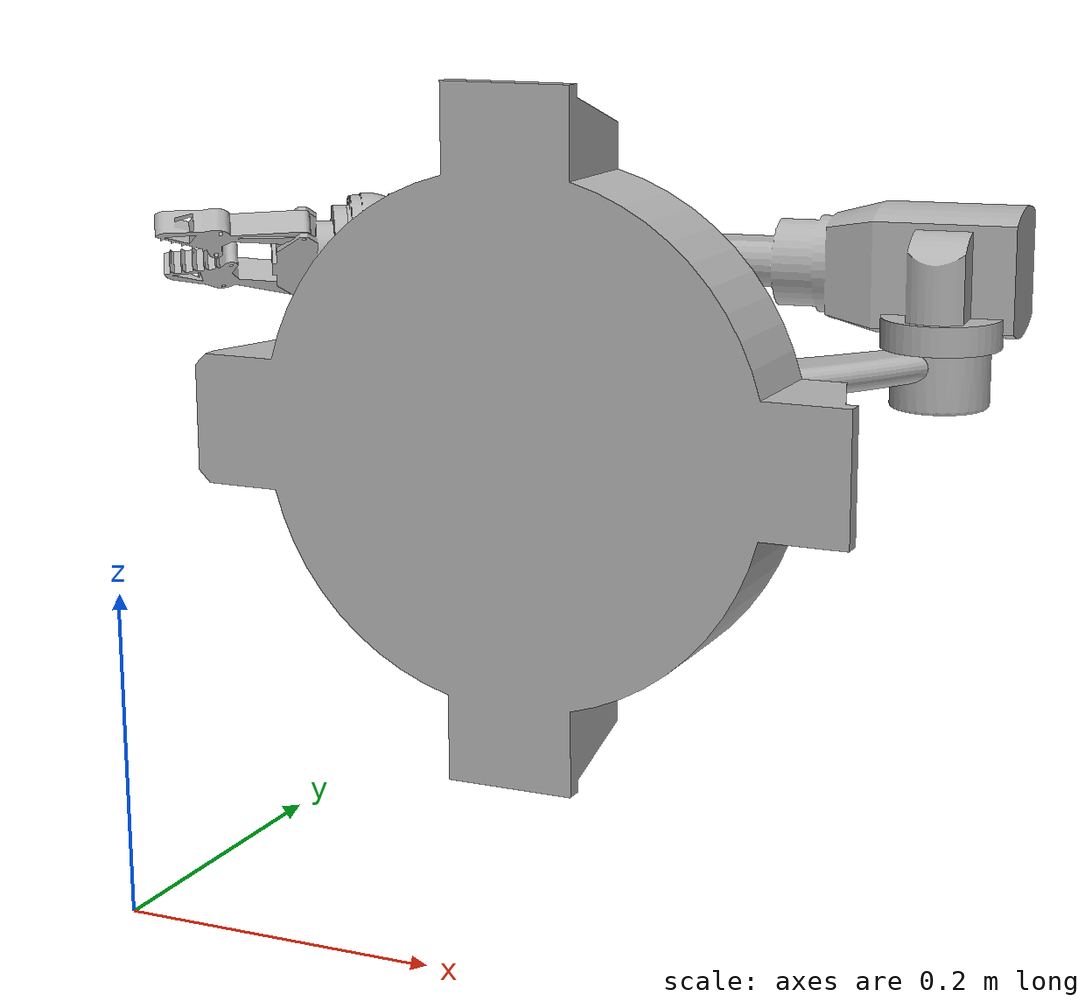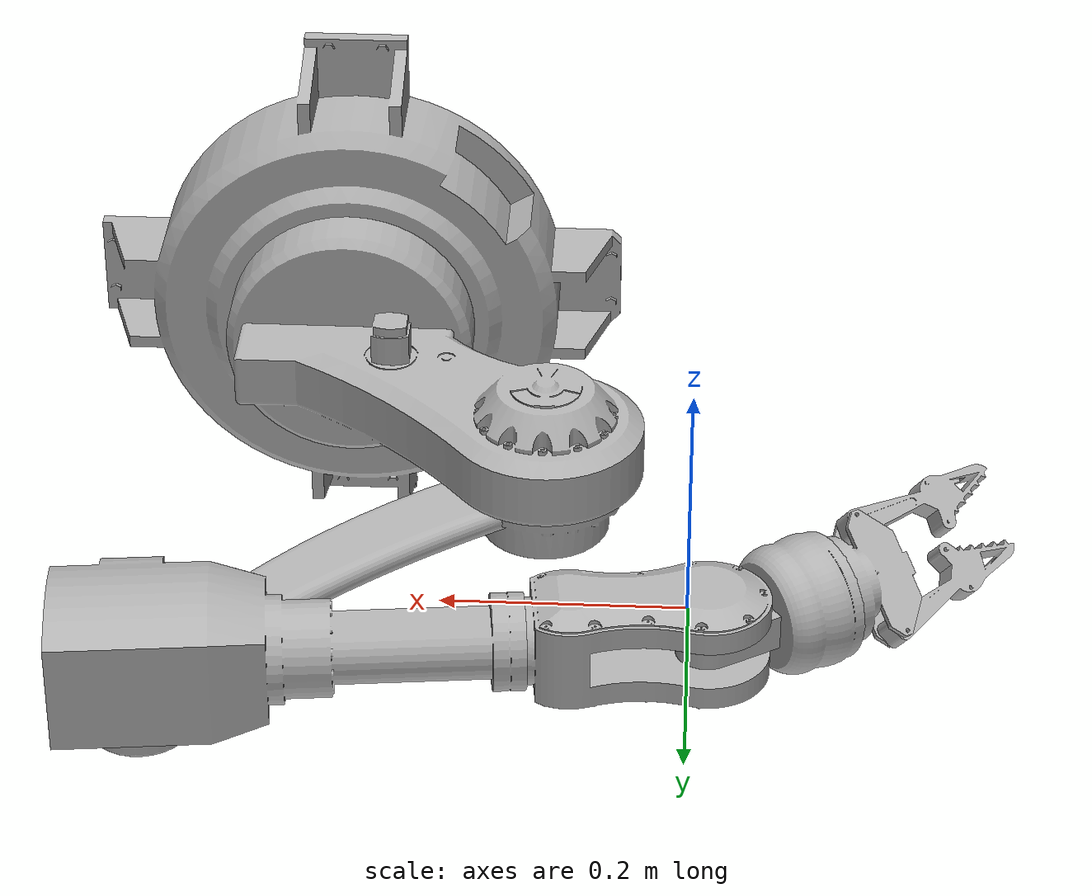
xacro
<?xml version="1.0" ?>
<robot name="industrial" xmlns:xacro="http://www.ros.org/wiki/xacro">

<xacro:include filename="$(find industrial_description)/urdf/materials.xacro" />
<xacro:include filename="$(find industrial_description)/urdf/industrial.trans" />
<xacro:include filename="$(find industrial_description)/urdf/industrial.gazebo" />
<link name="base_link">
  <inertial>
    <origin xyz="0.2548338399011842 0.039363954343754844 0.31001749808238654" rpy="0 0 0"/>
    <mass value="45.31428377967853"/>
    <inertia ixx="0.286619" iyy="0.523195" izz="0.286478" ixy="-0.000299" iyz="0.000324" ixz="-0.006278"/>
  </inertial>
  <visual>
    <origin xyz="0 0 0" rpy="0 0 0"/>
    <geometry>
      <mesh filename="package://industrial_description/meshes/base_link.stl" scale="0.001 0.001 0.001"/>
    </geometry>
    <material name="silver"/>
  </visual>
  <collision>
    <origin xyz="0 0 0" rpy="0 0 0"/>
    <geometry>
      <mesh filename="package://industrial_description/meshes/base_link.stl" scale="0.001 0.001 0.001"/>
    </geometry>
  </collision>
</link>

<link name="JAW_1_1">
  <inertial>
    <origin xyz="-0.05924661932331013 0.08495449970422879 0.003876432288686338" rpy="0 0 0"/>
    <mass value="18.758780946630694"/>
    <inertia ixx="0.097637" iyy="0.132376" izz="0.194071" ixy="0.074393" iyz="-0.004334" ixz="0.004819"/>
  </inertial>
  <visual>
    <origin xyz="-0.253392 -0.084654 -0.311443" rpy="0 0 0"/>
    <geometry>
      <mesh filename="package://industrial_description/meshes/JAW_1_1.stl" scale="0.001 0.001 0.001"/>
    </geometry>
    <material name="silver"/>
  </visual>
  <collision>
    <origin xyz="-0.253392 -0.084654 -0.311443" rpy="0 0 0"/>
    <geometry>
      <mesh filename="package://industrial_description/meshes/JAW_1_1.stl" scale="0.001 0.001 0.001"/>
    </geometry>
  </collision>
</link>

<link name="JAW_2_1">
  <inertial>
    <origin xyz="0.10451597593488317 0.0926934587697287 -0.015603834274600659" rpy="0 0 0"/>
    <mass value="6.328442247675211"/>
    <inertia ixx="0.065903" iyy="0.071298" izz="0.135195" ixy="-0.06454" iyz="-0.000178" ixz="-0.000489"/>
  </inertial>
  <visual>
    <origin xyz="-0.103425 -0.244808 -0.291223" rpy="0 0 0"/>
    <geometry>
      <mesh filename="package://industrial_description/meshes/JAW_2_1.stl" scale="0.001 0.001 0.001"/>
    </geometry>
    <material name="silver"/>
  </visual>
  <collision>
    <origin xyz="-0.103425 -0.244808 -0.291223" rpy="0 0 0"/>
    <geometry>
      <mesh filename="package://industrial_description/meshes/JAW_2_1.stl" scale="0.001 0.001 0.001"/>
    </geometry>
  </collision>
</link>

<link name="JAW_3_1">
  <inertial>
    <origin xyz="-0.04842956677440935 0.0339771945754212 0.046283489142288026" rpy="0 0 0"/>
    <mass value="11.40386436403121"/>
    <inertia ixx="0.015199" iyy="0.064243" izz="0.067337" ixy="-0.002718" iyz="-0.000888" ixz="0.000845"/>
  </inertial>
  <visual>
    <origin xyz="-0.353593 -0.489585 -0.291634" rpy="0 0 0"/>
    <geometry>
      <mesh filename="package://industrial_description/meshes/JAW_3_1.stl" scale="0.001 0.001 0.001"/>
    </geometry>
    <material name="silver"/>
  </visual>
  <collision>
    <origin xyz="-0.353593 -0.489585 -0.291634" rpy="0 0 0"/>
    <geometry>
      <mesh filename="package://industrial_description/meshes/JAW_3_1.stl" scale="0.001 0.001 0.001"/>
    </geometry>
  </collision>
</link>

<link name="JAW_4_1">
  <inertial>
    <origin xyz="-0.06679268105117524 -0.007650782836484127 0.0003458632493384406" rpy="0 0 0"/>
    <mass value="3.736976429844003"/>
    <inertia ixx="0.003209" iyy="0.009402" izz="0.008957" ixy="-0.000719" iyz="4e-06" ixz="-5e-06"/>
  </inertial>
  <visual>
    <origin xyz="-0.103992 -0.506311 -0.339224" rpy="0 0 0"/>
    <geometry>
      <mesh filename="package://industrial_description/meshes/JAW_4_1.stl" scale="0.001 0.001 0.001"/>
    </geometry>
    <material name="silver"/>
  </visual>
  <collision>
    <origin xyz="-0.103992 -0.506311 -0.339224" rpy="0 0 0"/>
    <geometry>
      <mesh filename="package://industrial_description/meshes/JAW_4_1.stl" scale="0.001 0.001 0.001"/>
    </geometry>
  </collision>
</link>

<link name="JAW_5_1">
  <inertial>
    <origin xyz="-0.049700553139761676 -0.031801725366641886 0.011526286038185563" rpy="0 0 0"/>
    <mass value="2.6723759798307576"/>
    <inertia ixx="0.002209" iyy="0.002555" izz="0.002819" ixy="-0.000372" iyz="1.1e-05" ixz="1.7e-05"/>
  </inertial>
  <visual>
    <origin xyz="0.010253 -0.493343 -0.326537" rpy="0 0 0"/>
    <geometry>
      <mesh filename="package://industrial_description/meshes/JAW_5_1.stl" scale="0.001 0.001 0.001"/>
    </geometry>
    <material name="silver"/>
  </visual>
  <collision>
    <origin xyz="0.010253 -0.493343 -0.326537" rpy="0 0 0"/>
    <geometry>
      <mesh filename="package://industrial_description/meshes/JAW_5_1.stl" scale="0.001 0.001 0.001"/>
    </geometry>
  </collision>
</link>

<link name="JAW_6_1">
  <inertial>
    <origin xyz="-0.013775380389767819 -0.008785724302981801 -8.748866270125166e-05" rpy="0 0 0"/>
    <mass value="0.600174321482272"/>
    <inertia ixx="0.000303" iyy="0.000284" izz="0.000281" ixy="2e-05" iyz="2e-05" ixz="-1.2e-05"/>
  </inertial>
  <visual>
    <origin xyz="0.089511 -0.442687 -0.338032" rpy="0 0 0"/>
    <geometry>
      <mesh filename="package://industrial_description/meshes/JAW_6_1.stl" scale="0.001 0.001 0.001"/>
    </geometry>
    <material name="silver"/>
  </visual>
  <collision>
    <origin xyz="0.089511 -0.442687 -0.338032" rpy="0 0 0"/>
    <geometry>
      <mesh filename="package://industrial_description/meshes/JAW_6_1.stl" scale="0.001 0.001 0.001"/>
    </geometry>
  </collision>
</link>

<link name="JAW_7__2__1">
  <inertial>
    <origin xyz="-0.03852995296871463 -0.027898058341137955 -0.010161505028423945" rpy="0 0 0"/>
    <mass value="0.2441632396754522"/>
    <inertia ixx="7.9e-05" iyy="0.000161" izz="0.000221" ixy="-9.1e-05" iyz="3e-06" ixz="-1e-06"/>
  </inertial>
  <visual>
    <origin xyz="0.103562 -0.403223 -0.370795" rpy="0 0 0"/>
    <geometry>
      <mesh filename="package://industrial_description/meshes/JAW_7__2__1.stl" scale="0.001 0.001 0.001"/>
    </geometry>
    <material name="silver"/>
  </visual>
  <collision>
    <origin xyz="0.103562 -0.403223 -0.370795" rpy="0 0 0"/>
    <geometry>
      <mesh filename="package://industrial_description/meshes/JAW_7__2__1.stl" scale="0.001 0.001 0.001"/>
    </geometry>
  </collision>
</link>

<link name="JAW_7_1">
  <inertial>
    <origin xyz="-0.02553781863191204 -0.04089139374660061 0.004945214888827543" rpy="0 0 0"/>
    <mass value="0.24576959229480003"/>
    <inertia ixx="0.00013" iyy="0.000118" izz="0.000215" ixy="-9.7e-05" iyz="3e-05" ixz="2.4e-05"/>
  </inertial>
  <visual>
    <origin xyz="0.137153 -0.456407 -0.318789" rpy="0 0 0"/>
    <geometry>
      <mesh filename="package://industrial_description/meshes/JAW_7_1.stl" scale="0.001 0.001 0.001"/>
    </geometry>
    <material name="silver"/>
  </visual>
  <collision>
    <origin xyz="0.137153 -0.456407 -0.318789" rpy="0 0 0"/>
    <geometry>
      <mesh filename="package://industrial_description/meshes/JAW_7_1.stl" scale="0.001 0.001 0.001"/>
    </geometry>
  </collision>
</link>

<joint name="Revolute 1" type="continuous">
  <origin xyz="0.253392 0.084654 0.311443" rpy="0 0 0"/>
  <parent link="base_link"/>
  <child link="JAW_1_1"/>
  <axis xyz="0.0 1.0 -0.0"/>
</joint>

<joint name="Revolute 2" type="continuous">
  <origin xyz="-0.149967 0.160154 -0.02022" rpy="0 0 0"/>
  <parent link="JAW_1_1"/>
  <child link="JAW_2_1"/>
  <axis xyz="0.001642 0.0 -0.999999"/>
</joint>

<joint name="Revolute 3" type="continuous">
  <origin xyz="0.250168 0.244777 0.000411" rpy="0 0 0"/>
  <parent link="JAW_2_1"/>
  <child link="JAW_3_1"/>
  <axis xyz="-0.001642 -0.0 0.999999"/>
</joint>

<joint name="Revolute 4" type="continuous">
  <origin xyz="-0.249601 0.016726 0.04759" rpy="0 0 0"/>
  <parent link="JAW_3_1"/>
  <child link="JAW_4_1"/>
  <axis xyz="-0.993508 -0.113747 -0.001632"/>
</joint>

<joint name="Revolute 5" type="continuous">
  <origin xyz="-0.114245 -0.012968 -0.012687" rpy="0 0 0"/>
  <parent link="JAW_4_1"/>
  <child link="JAW_5_1"/>
  <axis xyz="-0.00061 -0.009017 0.999959"/>
</joint>

<joint name="Revolute 6" type="continuous">
  <origin xyz="-0.079258 -0.050656 0.011495" rpy="0 0 0"/>
  <parent link="JAW_5_1"/>
  <child link="JAW_6_1"/>
  <axis xyz="-0.843092 -0.537743 -0.005363"/>
</joint>

<joint name="Revolute 7" type="continuous">
  <origin xyz="-0.014051 -0.039464 0.032763" rpy="0 0 0"/>
  <parent link="JAW_6_1"/>
  <child link="JAW_7__2__1"/>
  <axis xyz="0.346139 -0.535002 -0.770689"/>
</joint>

<joint name="Revolute 8" type="continuous">
  <origin xyz="-0.047642 0.01372 -0.019243" rpy="0 0 0"/>
  <parent link="JAW_6_1"/>
  <child link="JAW_7_1"/>
  <axis xyz="0.346139 -0.535002 -0.770689"/>
</joint>

</robot>

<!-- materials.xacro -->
<robot name="industrial" xmlns:xacro="http://www.ros.org/wiki/xacro" >

<material name="silver">
  <color rgba="0.700 0.700 0.700 1.000"/>
</material>

</robot>

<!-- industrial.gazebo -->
<robot name="industrial" xmlns:xacro="http://www.ros.org/wiki/xacro" >

<xacro:property name="body_color" value="Gazebo/Silver" />

<gazebo>
  <plugin name="control" filename="libgazebo_ros_control.so"/>
</gazebo>
<gazebo reference="base_link">
  <material>${body_color}</material>
  <mu1>0.2</mu1>
  <mu2>0.2</mu2>
  <selfCollide>true</selfCollide>
  <gravity>true</gravity>
</gazebo>

<gazebo reference="JAW_1_1">
  <material>${body_color}</material>
  <mu1>0.2</mu1>
  <mu2>0.2</mu2>
  <selfCollide>true</selfCollide>
</gazebo>

<gazebo reference="JAW_2_1">
  <material>${body_color}</material>
  <mu1>0.2</mu1>
  <mu2>0.2</mu2>
  <selfCollide>true</selfCollide>
</gazebo>

<gazebo reference="JAW_3_1">
  <material>${body_color}</material>
  <mu1>0.2</mu1>
  <mu2>0.2</mu2>
  <selfCollide>true</selfCollide>
</gazebo>

<gazebo reference="JAW_4_1">
  <material>${body_color}</material>
  <mu1>0.2</mu1>
  <mu2>0.2</mu2>
  <selfCollide>true</selfCollide>
</gazebo>

<gazebo reference="JAW_5_1">
  <material>${body_color}</material>
  <mu1>0.2</mu1>
  <mu2>0.2</mu2>
  <selfCollide>true</selfCollide>
</gazebo>

<gazebo reference="JAW_6_1">
  <material>${body_color}</material>
  <mu1>0.2</mu1>
  <mu2>0.2</mu2>
  <selfCollide>true</selfCollide>
</gazebo>

<gazebo reference="JAW_7__2__1">
  <material>${body_color}</material>
  <mu1>0.2</mu1>
  <mu2>0.2</mu2>
  <selfCollide>true</selfCollide>
</gazebo>

<gazebo reference="JAW_7_1">
  <material>${body_color}</material>
  <mu1>0.2</mu1>
  <mu2>0.2</mu2>
  <selfCollide>true</selfCollide>
</gazebo>

</robot>
